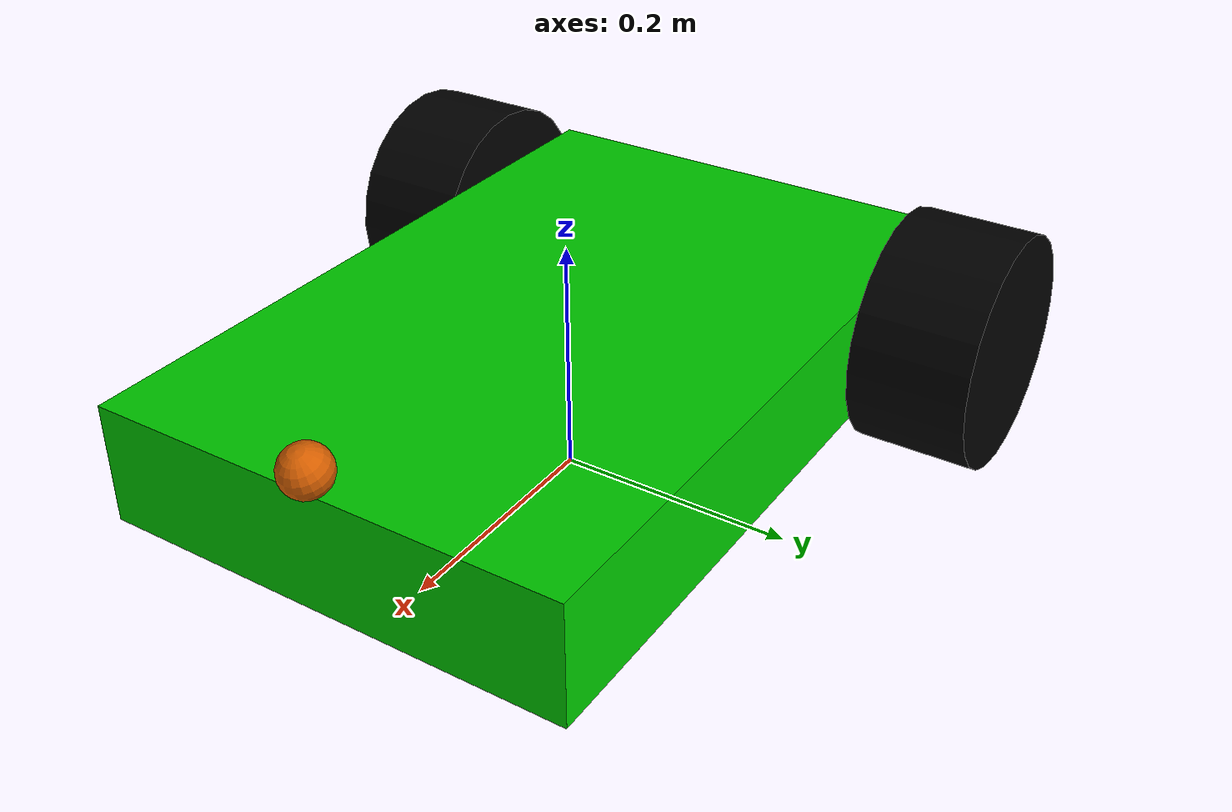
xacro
<?xml version="1.0"?>
<robot name="follower" xmlns:xacro="http://www.ros.org/wiki/xacro">

    <xacro:include filename="inertia.xacro" />
    <xacro:include filename="follower.urdf.xacro" />
    <xacro:include filename="gazebo.xacro" />

</robot>

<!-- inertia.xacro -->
<robot xmlns:xacro="http://www.ros.org/wiki/xacro">

    <xacro:macro name="box_inertia" params="m l w h xyz rpy">
        <inertial>
            <origin xyz="${xyz}" rpy="${rpy}" />
            <mass value="${m}" />
            <inertia ixx="${(m/12) * (h*h + l*l)}" ixy="0" ixz="0"
                     iyy="${(m/12) * (w*w + l*l)}" iyz="0"
                     izz="${(m/12) * (w*w + h*h)}" />
        </inertial>
    </xacro:macro>

    <xacro:macro name="cylinder_inertia" params="m r h xyz rpy">
        <inertial>
            <origin xyz="${xyz}" rpy="${rpy}" />
            <mass value="${m}" />
            <inertia ixx="${(m/12) * (3*r*r + h*h)}" ixy="0" ixz="0"
                     iyy="${(m/12) * (3*r*r + h*h)}" iyz="0"
                     izz="${(m/2) * (r*r)}" />
        </inertial>
    </xacro:macro>

    <xacro:macro name="sphere_inertia" params="m r xyz rpy">
        <inertial>
            <origin xyz="${xyz}" rpy="${rpy}" />
            <mass value="${m}" />
            <inertia ixx="${(2/5) * m * r * r}" ixy="0" ixz="0"
                     iyy="${(2/5) * m * r * r}" iyz="0"
                     izz="${(2/5) * m * r * r}" />
        </inertial>
    </xacro:macro>

</robot>

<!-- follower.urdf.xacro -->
<robot name="follower" xmlns:xacro="http://www.ros.org/wiki/xacro">

    <xacro:property name="base_length" value="0.6"/>
    <xacro:property name="base_width" value="0.4"/>
    <xacro:property name="base_height" value="0.1"/>
    <xacro:property name="wheel_length" value="0.1"/>
    <xacro:property name="wheel_radius" value="0.1"/>
    <xacro:property name="caster_radius" value="0.05"/>
    <xacro:property name="cam_radius" value="0.02"/>

    <material name="green">
        <color rgba="0.0 0.8 0.0 0.9"/>
    </material>

    <material name="black">
        <color rgba="0.0 0.0 0.0 1.0"/>
    </material>

    <material name="gray">
        <color rgba="0.5 0.5 0.5 0.8"/>
    </material>

    <link name="ground"/>

    <link name="base_link">
        <visual>
            <geometry>
                <box size="${base_length} ${base_width} ${base_height}"/>
            </geometry>
            <material name="green"/>
        </visual>

        <collision>
            <geometry>
                <box size="${base_length} ${base_width} ${base_height}"/>
            </geometry>
        </collision>
        <xacro:box_inertia m="1.0" l="${base_length}" w="${base_width}" h="${base_height}"
                           xyz="0 0 ${base_height / 2.0}" rpy="0 0 0" />
    </link>

    <joint name="base_ground" type="fixed">
        <parent link="ground"/>
        <child link="base_link"/>
        <origin xyz="0.0 0.0 0.1"/>
    </joint>

    <link name="left_wheel">
        <visual>
            <geometry>
                <cylinder radius="${wheel_radius}" length="${wheel_length}"/>
            </geometry>
            <origin xyz="0.0 0.0 0.0" rpy="1.5707 0.0 0.0"/>
            <material name="black"/>
        </visual>

        <collision>
            <geometry>
                <cylinder radius="${wheel_radius}" length="${wheel_length}"/>
            </geometry>
            <origin xyz="0.0 0.0 0.0" rpy="1.5707 0.0 0.0"/>
        </collision>
        <xacro:cylinder_inertia m="0.5" r="${wheel_radius}" h="${wheel_length}"
                            xyz="0 0 0" rpy="${pi / 2.0} 0 0" />
    </link>

    <joint name="left_base" type="continuous">
        <parent link="base_link"/>
        <child link="left_wheel"/>
        <origin xyz="${-base_length/3.0} ${base_width / 2.0 + wheel_length / 2.0} 0.0" rpy="0.0 0.0 0.0"/>
        <axis xyz="0.0 1.0 0.0"/>
    </joint>

    <link name="right_wheel">
        <visual>
            <geometry>
                <cylinder radius="${wheel_radius}" length="${wheel_length}"/>
            </geometry>
            <origin xyz="0.0 0.0 0.0" rpy="1.5707 0.0 0.0"/>
            <material name="black"/>
        </visual>

        <collision>
            <geometry>
                <cylinder radius="${wheel_radius}" length="${wheel_length}"/>
            </geometry>
            <origin xyz="0.0 0.0 0.0" rpy="1.5707 0.0 0.0"/>
        </collision>
        <xacro:cylinder_inertia m="0.5" r="${wheel_radius}" h="${wheel_length}"
                            xyz="0 0 0" rpy="${pi / 2.0} 0 0" />
    </link>

    <joint name="right_base" type="continuous">
        <parent link="base_link"/>
        <child link="right_wheel"/>
        <origin xyz="${-(base_length/3.0)} ${-(base_width / 2.0 + wheel_length / 2.0)} 0.0" rpy="0.0 0.0 0.0"/>
        <axis xyz="0.0 1.0 0.0"/>
    </joint>

    <link name="caster">
        <visual>
            <geometry>
                <sphere radius="${caster_radius}"/>
            </geometry>
            <material name="gray"/>
        </visual>

        <collision>
            <geometry>
                <sphere radius="${caster_radius}"/>
            </geometry>
        </collision>
        <xacro:sphere_inertia m="0.1" r="${caster_radius}"
                            xyz="0 0 0" rpy="0 0 0" />
    </link>

    <joint name="caster_joint" type="continuous">
        <parent link="base_link"/>
        <child link="caster"/>
        <origin xyz="0.2 0.0 -0.05"/>
        <axis xyz="1.0 0.0 0.0"/>
    </joint>

    <link name="camera_link">
        <visual>
            <geometry>
                <sphere radius="${cam_radius}"/>
            </geometry>
        </visual>

        <collision>
            <geometry>
                <sphere radius="${cam_radius}"/>
            </geometry>
        </collision>
        <xacro:sphere_inertia m="0.1" r="${cam_radius}"
                            xyz="0 0 0" rpy="0 0 0"/>
    </link>

    <joint name="camera_joint" type="fixed">
        <parent link="base_link"/>
        <child link="camera_link"/>
        <origin xyz="${base_length/2.0} 0.0 ${base_height/2.0 + cam_radius}" rpy="0.0 0.34 0.0"/>
    </joint>

</robot>
